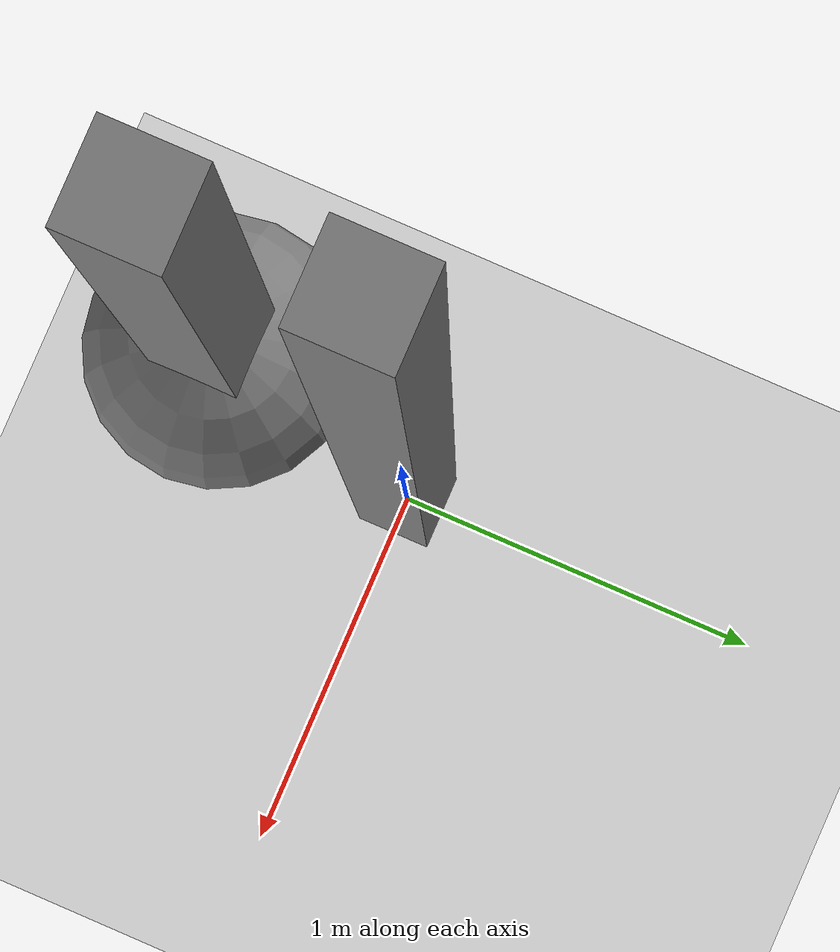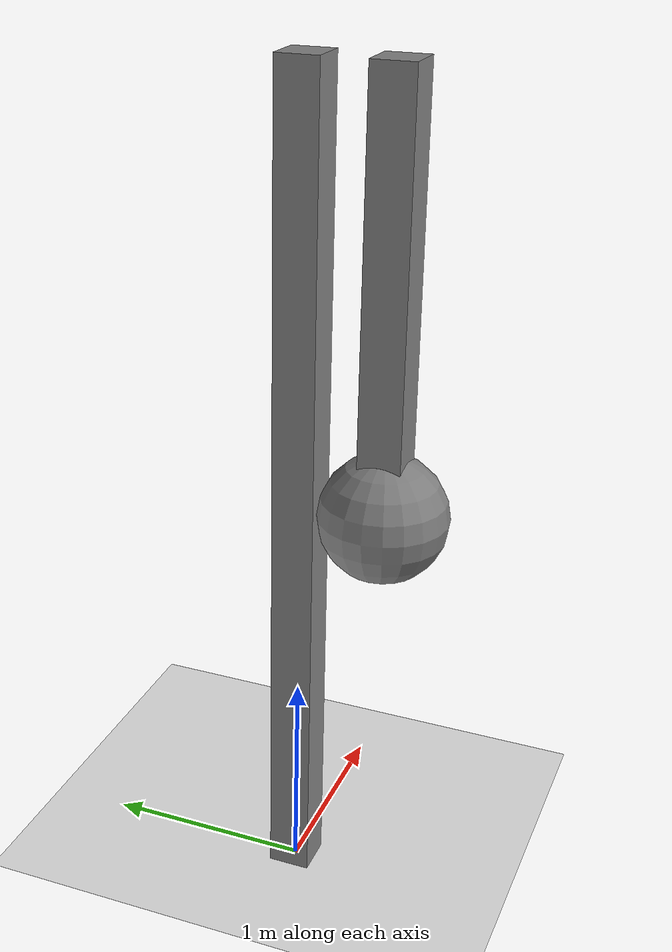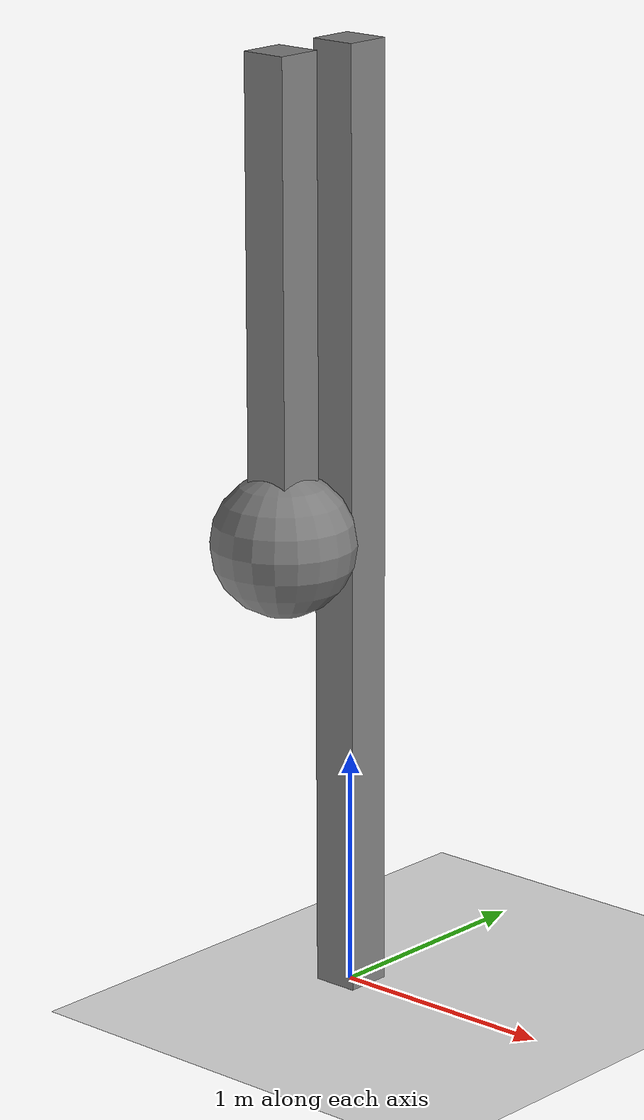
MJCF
<mujoco>
    <option gravity="0 0 -9.81" />
    <visual>
    <global offwidth="1920" offheight="1080"/>
    </visual>
  <worldbody>
    <light diffuse=".5 .5 .5" pos="0 0 5" dir="0 0 -1"/>
    <geom type="plane" size="10 10 0.1" rgba=".9 .9 .9 1"/>
    <body name="pillar" pos="0 0 2">
        <inertial mass="1" pos="0 0 0"/>
        <geom type="box" size=".1 .1 2" pos="0 0 0"/>

        <body name="pendulum" pos="0 -.4 2">
            <inertial mass="1" pos="0 0 0" diaginertia="1 1 0.1"/>
            <joint name="joint1" type="hinge" axis="0 -1 0" damping="2"/>
            <geom type="box" size=".1 .1 1" pos="0 0 -1"/>

            <body name="sphere" pos="0 0 -2">
                <inertial mass="3" pos="0 0 0" diaginertia="1 1 1"/>
                <geom type="sphere" size=".3" pos="0 0 0"/>
            </body>
        </body>
    </body>
  </worldbody>
    <keyframe>
        <key name="home" qpos="0.75"/>
    </keyframe>

    <actuator>
		  <motor ctrllimited="false" ctrlrange="-5 5" gear="1" joint="joint1" name="slide"/>
	  </actuator>
</mujoco>
